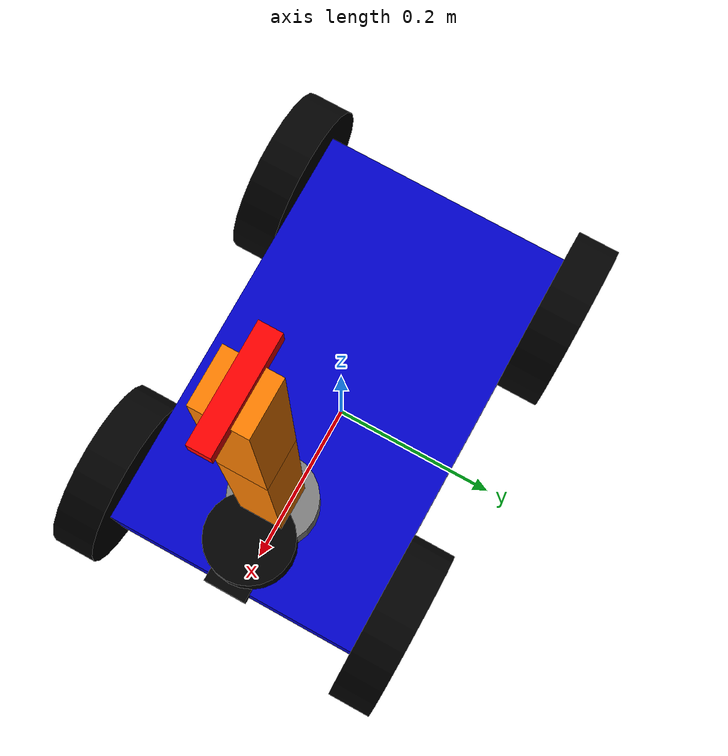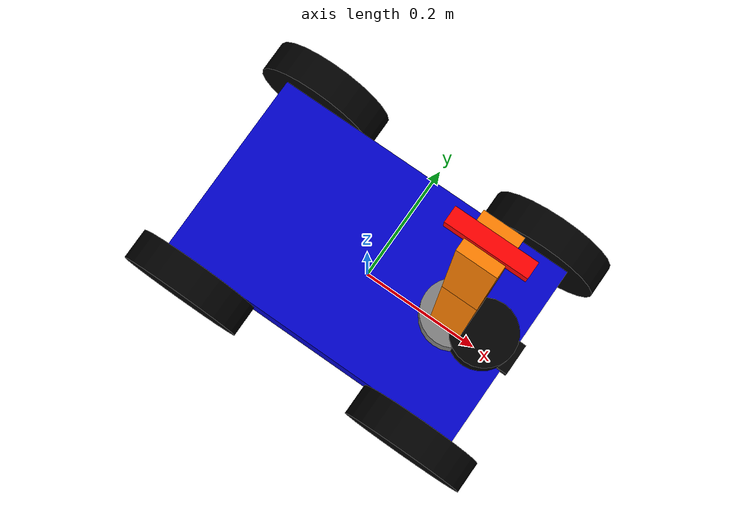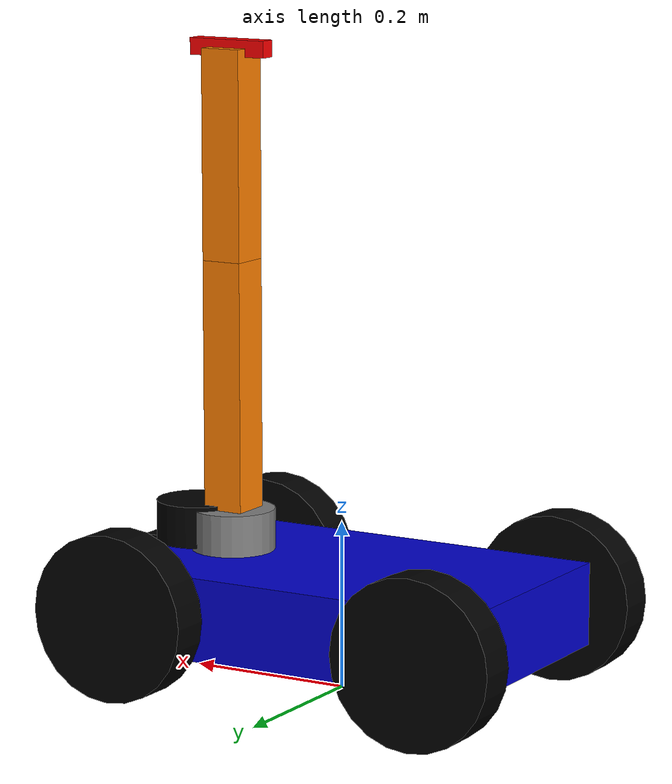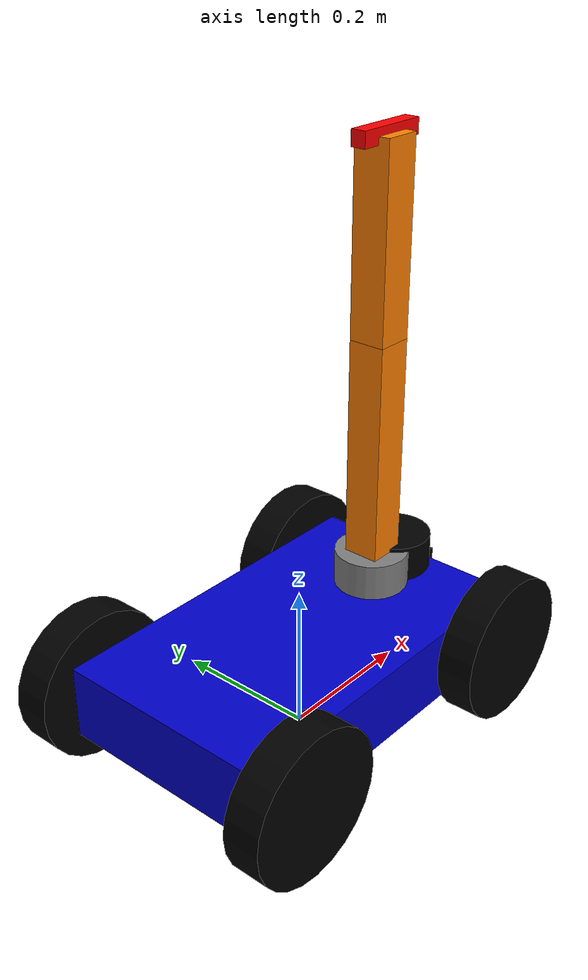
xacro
<?xml version="1.0"?>
<robot name="robot_description" xmlns:xacro="http://www.ros.org/wiki/xacro">

  <!-- Include the sub-components -->
  <xacro:include filename="$(find robot_description)/urdf/mobile_base.xacro"/>
  <xacro:include filename="$(find robot_description)/urdf/manipulator_arm.xacro"/>
  <xacro:include filename="$(find robot_description)/urdf/sensors.xacro"/>

  <!--
    INSTANTIATE ROBOT
    1. Create the mobile base (chassis + wheels)
    2. Attach the arm to the chassis
    3. Attach sensors to the chassis
  -->

  <!-- Create the base with name prefix 'robot' -->
  <xacro:mobile_base name="robot"/>

  <!-- Attach arm to the chassis link -->
  <xacro:manipulator_arm parent="robot_chassis"/>

  <!-- Attach sensors to the chassis link -->
  <xacro:add_sensors parent="robot_chassis"/>

  <!--
    GAZEBO PLUGINS
    These are required for the robot to actually move in simulation.
  -->
  <gazebo>
    <!-- Skid Steer Drive Controller (for 4 wheels) -->
    <plugin name="skid_steer_drive_controller" filename="libgazebo_ros_skid_steer_drive.so">
      <updateRate>100.0</updateRate>
      <robotNamespace>/</robotNamespace>
      <leftFrontJoint>front_left_wheel_joint</leftFrontJoint>
      <rightFrontJoint>front_right_wheel_joint</rightFrontJoint>
      <leftRearJoint>rear_left_wheel_joint</leftRearJoint>
      <rightRearJoint>rear_right_wheel_joint</rightRearJoint>
      <wheelSeparation>0.35</wheelSeparation>
      <wheelDiameter>0.2</wheelDiameter>
      <robotBaseFrame>robot_footprint</robotBaseFrame>
      <torque>20</torque>
      <commandTopic>cmd_vel</commandTopic>
      <odometryTopic>odom</odometryTopic>
      <odometryFrame>odom</odometryFrame>
      <broadcastTF>true</broadcastTF>
    </plugin>
  </gazebo>

</robot>

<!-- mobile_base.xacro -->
<robot xmlns:xacro="http://www.ros.org/wiki/xacro">

  <!--
    MACRO: MOBILE BASE
    This macro defines the chassis and the 4 wheels.
    Arguments:
      - name: Prefix for the links/joints to avoid naming conflicts
  -->
  <xacro:macro name="mobile_base" params="name">

    <!--
      BASE FOOTPRINT
      This is a virtual link that sits on the ground (z=0).
      It's useful for navigation algorithms to know where the "floor" is relative to the robot.
    -->
    <link name="${name}_footprint"/>

    <joint name="${name}_footprint_joint" type="fixed">
      <parent link="${name}_footprint"/>
      <child link="${name}_chassis"/>
      <origin xyz="0 0 0.1" rpy="0 0 0"/> <!-- Raise chassis 10cm off ground -->
    </joint>

    <!--
      CHASSIS LINK
      The main body of the robot.
    -->
    <link name="${name}_chassis">
      <visual>
        <geometry>
          <box size="0.5 0.3 0.1"/> <!-- Length 0.5m, Width 0.3m, Height 0.1m -->
        </geometry>
        <material name="blue">
          <color rgba="0 0 0.8 1"/>
        </material>
      </visual>
      <collision>
        <geometry>
          <box size="0.5 0.3 0.1"/>
        </geometry>
      </collision>
      <inertial>
        <mass value="10.0"/> <!-- Heavy base for stability -->
        <inertia ixx="0.1" ixy="0" ixz="0" iyy="0.1" iyz="0" izz="0.1"/>
      </inertial>
    </link>

    <!--
      WHEEL MACRO
      Helper to create 4 identical wheels.
    -->
    <xacro:macro name="wheel" params="prefix x_pos y_pos">
      <link name="${prefix}_wheel">
        <visual>
          <geometry>
            <cylinder radius="0.1" length="0.05"/>
          </geometry>
          <material name="black">
            <color rgba="0 0 0 1"/>
          </material>
        </visual>
        <collision>
          <geometry>
            <cylinder radius="0.1" length="0.05"/>
          </geometry>
        </collision>
        <inertial>
          <mass value="1.0"/>
          <inertia ixx="0.01" ixy="0" ixz="0" iyy="0.01" iyz="0" izz="0.01"/>
        </inertial>
      </link>

      <joint name="${prefix}_wheel_joint" type="continuous">
        <parent link="${name}_chassis"/>
        <child link="${prefix}_wheel"/>
        <!-- Rotate cylinder to be upright for a wheel -->
        <origin xyz="${x_pos} ${y_pos} 0" rpy="-1.5707 0 0"/>
        <axis xyz="0 0 1"/> <!-- Rotate around the cylinder's Z axis (which is robot's Y) -->
      </joint>
    </xacro:macro>

    <!-- Instantiate 4 wheels -->
    <xacro:wheel prefix="front_left"  x_pos="0.2"  y_pos="0.175"/>
    <xacro:wheel prefix="front_right" x_pos="0.2"  y_pos="-0.175"/>
    <xacro:wheel prefix="rear_left"   x_pos="-0.2" y_pos="0.175"/>
    <xacro:wheel prefix="rear_right"  x_pos="-0.2" y_pos="-0.175"/>

  </xacro:macro>
</robot>

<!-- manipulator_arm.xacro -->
<robot xmlns:xacro="http://www.ros.org/wiki/xacro">

  <!--
    MACRO: MANIPULATOR ARM
    A simple 3-DOF arm (Shoulder, Elbow, Wrist).
    Arguments:
      - parent: The link this arm attaches to (usually the chassis)
  -->
  <xacro:macro name="manipulator_arm" params="parent">

    <!--
      ARM BASE
      Fixed mount point on the robot chassis.
    -->
    <joint name="arm_base_joint" type="fixed">
      <parent link="${parent}"/>
      <child link="arm_base_link"/>
      <origin xyz="0.15 0 0.05" rpy="0 0 0"/> <!-- Mounted slightly forward -->
    </joint>

    <link name="arm_base_link">
      <visual>
        <geometry>
          <cylinder radius="0.05" length="0.1"/>
        </geometry>
        <material name="gray">
          <color rgba="0.5 0.5 0.5 1"/>
        </material>
      </visual>
    </link>

    <!--
      LINK 1: SHOULDER (Rotates around Z - Pan)
    -->
    <link name="arm_link_1">
      <visual>
        <geometry>
          <box size="0.05 0.05 0.3"/>
        </geometry>
        <origin xyz="0 0 0.15" rpy="0 0 0"/> <!-- Visual offset so joint is at bottom -->
        <material name="orange">
          <color rgba="1 0.5 0 1"/>
        </material>
      </visual>
      <collision>
        <geometry>
          <box size="0.05 0.05 0.3"/>
        </geometry>
        <origin xyz="0 0 0.15" rpy="0 0 0"/>
      </collision>
      <inertial>
        <mass value="0.5"/>
        <inertia ixx="0.01" ixy="0" ixz="0" iyy="0.01" iyz="0" izz="0.01"/>
      </inertial>
    </link>

    <joint name="shoulder_joint" type="revolute">
      <parent link="arm_base_link"/>
      <child link="arm_link_1"/>
      <origin xyz="0 0 0.05" rpy="0 0 0"/>
      <axis xyz="0 0 1"/>
      <limit lower="-3.14" upper="3.14" effort="10" velocity="1.0"/>
    </joint>

    <!--
      LINK 2: ELBOW (Rotates around Y - Tilt)
    -->
    <link name="arm_link_2">
      <visual>
        <geometry>
          <box size="0.05 0.05 0.25"/>
        </geometry>
        <origin xyz="0 0 0.125" rpy="0 0 0"/>
        <material name="orange"/>
      </visual>
      <collision>
        <geometry>
          <box size="0.05 0.05 0.25"/>
        </geometry>
        <origin xyz="0 0 0.125" rpy="0 0 0"/>
      </collision>
      <inertial>
        <mass value="0.4"/>
        <inertia ixx="0.01" ixy="0" ixz="0" iyy="0.01" iyz="0" izz="0.01"/>
      </inertial>
    </link>

    <joint name="elbow_joint" type="revolute">
      <parent link="arm_link_1"/>
      <child link="arm_link_2"/>
      <origin xyz="0 0 0.3" rpy="0 0 0"/>
      <axis xyz="0 1 0"/>
      <limit lower="-1.57" upper="1.57" effort="10" velocity="1.0"/>
    </joint>

    <!--
      END EFFECTOR / GRIPPER
      Simple box representing a tool.
    -->
    <link name="gripper_link">
      <visual>
        <geometry>
          <box size="0.1 0.02 0.02"/>
        </geometry>
        <material name="red">
          <color rgba="1 0 0 1"/>
        </material>
      </visual>
    </link>

    <joint name="wrist_joint" type="revolute">
      <parent link="arm_link_2"/>
      <child link="gripper_link"/>
      <origin xyz="0 0 0.25" rpy="0 0 0"/>
      <axis xyz="0 1 0"/>
      <limit lower="-1.57" upper="1.57" effort="5" velocity="1.0"/>
    </joint>

  </xacro:macro>
</robot>

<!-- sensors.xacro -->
<robot xmlns:xacro="http://www.ros.org/wiki/xacro">

  <!--
    MACRO: SENSORS
    Adds a Lidar and a Camera to the robot.
    Arguments:
      - parent: The link to attach sensors to.
  -->
  <xacro:macro name="add_sensors" params="parent">

    <!--
      LIDAR SENSOR
      Used for 2D mapping and navigation (AMCL/Gmapping).
    -->
    <link name="lidar_link">
      <visual>
        <geometry>
          <cylinder radius="0.05" length="0.05"/>
        </geometry>
        <material name="black"/>
      </visual>
    </link>

    <joint name="lidar_joint" type="fixed">
      <parent link="${parent}"/>
      <child link="lidar_link"/>
      <origin xyz="0.2 0 0.08" rpy="0 0 0"/> <!-- Mounted on front top of chassis -->
    </joint>

    <!--
      CAMERA SENSOR
      Used for visual perception.
    -->
    <link name="camera_link">
      <visual>
        <geometry>
          <box size="0.02 0.05 0.02"/>
        </geometry>
        <material name="black"/>
      </visual>
    </link>

    <joint name="camera_joint" type="fixed">
      <parent link="${parent}"/>
      <child link="camera_link"/>
      <origin xyz="0.25 0 0.05" rpy="0 0 0"/> <!-- Mounted at the very front -->
    </joint>

    <!--
      GAZEBO PLUGIN: LIDAR
      This plugin makes the lidar sensor actually publish laser scan data in Gazebo.
    -->
    <gazebo reference="lidar_link">
      <sensor type="ray" name="lidar_sensor">
        <pose>0 0 0 0 0 0</pose>
        <visualize>true</visualize>
        <update_rate>10</update_rate>
        <ray>
          <scan>
            <horizontal>
              <samples>360</samples>
              <resolution>1</resolution>
              <min_angle>-3.14159</min_angle>
              <max_angle>3.14159</max_angle>
            </horizontal>
          </scan>
          <range>
            <min>0.1</min>
            <max>10.0</max>
            <resolution>0.01</resolution>
          </range>
          <noise>
            <type>gaussian</type>
            <mean>0.0</mean>
            <stddev>0.01</stddev>
          </noise>
        </ray>
        <plugin name="gazebo_ros_lidar_controller" filename="libgazebo_ros_laser.so">
          <topicName>scan</topicName>
          <frameName>lidar_link</frameName>
        </plugin>
      </sensor>
    </gazebo>

  </xacro:macro>
</robot>
